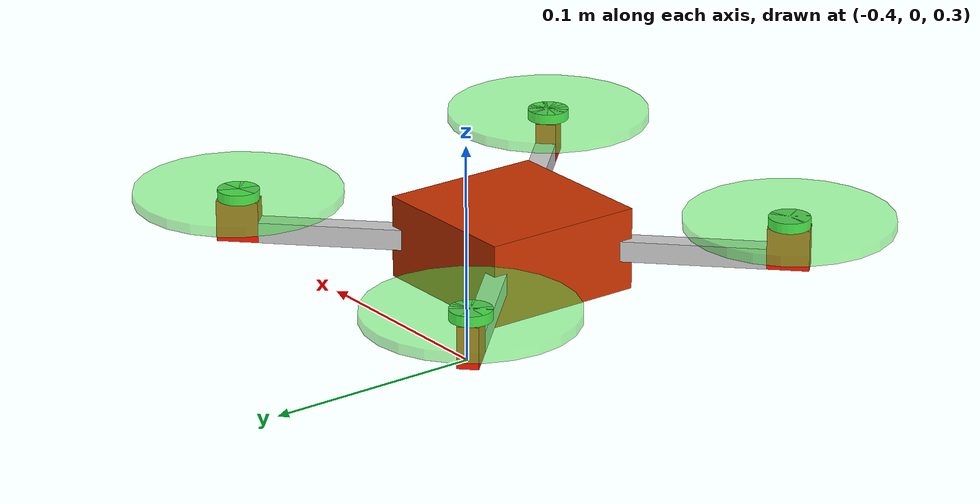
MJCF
<mujoco>
    <option	timestep="0.01" gravity="0 0 -9.81" density="1" viscosity="18e-3" integrator="RK4"/>

    <asset>
        <texture builtin="gradient" type="skybox" height="100" width="100" rgb1="1 1 1" rgb2="0 0 0"/>
        <texture name="texgeom" builtin="flat" height="1278" mark="cross" markrgb="1 1 1" random="0.01" rgb1="0.8 0.6 0.4" rgb2="0.8 0.6 0.4" type="cube" width="127"/>
        <texture name="texplane" builtin="checker" height="100" width="100" rgb1="0 0 0" rgb2="0.8 0.8 0.8" type="2d"/>
        <material name="MatPlane" reflectance="0.5" shininess="1" specular="1" texrepeat="60 60" texture="texplane"/>
        <material name="geom" texture="texgeom" texuniform="true"/>
    </asset>

    <worldbody>
        <light cutoff="100" diffuse="1 1 1" dir="-0 0 -1.3" directional="true" exponent="1" pos="0 0 1.3" specular=".1 .1 .1"/>
        <geom conaffinity="1" condim="3" material="MatPlane" name="floor" pos="0 0 0" rgba="0.4 0.3 0.3 1" size="5 5 0.2" type="plane"/>
        <camera name="fixed" pos="-0.3 -1 1.5" euler="0 0 0"/>
        <camera name="fixed1" pos="-0.3 -0.7 .7" xyaxes="1 0 0 0 1 2" mode="track" />

        <body name="core" pos="-.3 -.1 0.3" euler="0 0 45">

            <camera name="my_cam" pos="0 0 0" euler="0 0 0"/>
            <site name="center_body" type="sphere" pos="0 0 0" size=".01" quat="1 0 0 0" rgba=".3 .8 .3 1"/>

            <geom name="core_geom" type="box" pos="0 0 0" euler="0 0 45" size=".04 .04 .02" rgba=".8 .2 0 1" mass=".1"/>

            <joint name="root" type="free" damping="0" armature="0" pos="0 0 0" limited="false"/>

            <geom name="arm_front0" type="box" pos=".08 0 0" size=".04 .005 .005" quat="1 0 0 0" rgba=".8 .8 .8 1" mass=".02"/>
            <geom name="arm_back0" type="box" pos="-.08 0 0" size=".04 .005 .005" quat="0 0 0 1" rgba=".8 .8 .8 1" mass=".02"/>
            <geom name="arm_left0" type="box" pos="0 .08 0" size=".04 .005 .005" quat=".707 0 0 .707" rgba=".8 .8 .8 1" mass=".02"/>
            <geom name="arm_right0" type="box" pos="0 -.08 0" size=".04 .005 .005" quat=".707 0 0 -.707" rgba=".8 .8 .8 1" mass=".02"/>

            <body name="arm_front1" pos=".12 0 0">
                <geom type="box" pos=".01 0 .005" size=".01 .005 .01" quat="1 0 0 0" rgba="1 .1 0 1" mass=".02"/>
                <body name="thruster0" pos="0.01 0 0.015">
                    <geom type="cylinder" pos="0 0 .0025" size=".05 .0025" quat="1 0 0 0" rgba=".3 1 .3 0.5" mass=".005"/>
                    <site name="motor0" type="cylinder" pos="0 0 .0025" size=".01 .0025" quat="1 0 0 0" rgba=".3 .8 .3 1"/>
                </body>
            </body>

            <body name="arm_back1" pos="-.12 0 0">
                <geom type="box" pos="-.01 0 .005" size=".01 .005 .01" quat="0 0 0 1" rgba="1 .1 0 1" mass=".02"/>
                <body name="thruster1" pos="-0.01 0 .015">
                    <geom type="cylinder" pos="0 0 .0025" size=".05 .0025" quat="1 0 0 0" rgba=".3 1 .3 0.5" mass=".005"/>
                    <site name="motor1" type="cylinder" pos="0 0 .0025" size=".01 .0025" quat="1 0 0 0" rgba=".3 .8 .3 1"/>

                </body>
            </body>

            <body name="arm_left1" pos="0 .12 0">
                <geom type="box" pos="0 .01 .005" size=".01 .005 .01" quat=".7071068 0 0 .7071068" rgba="1 .1 0 1" mass=".02"/>
                <body name="thruster2" pos="0 0.01 0.015">
                    <geom type="cylinder" pos="0 0 .0025" size=".05 .0025" quat="1 0 0 0" rgba=".3 1 .3 0.5" mass=".005"/>
                    <site name="motor2" type="cylinder" pos="0 0 .0025" size=".01 0.0025" quat="1 0 0 0" rgba=".3 .8 .3 1"/>

                </body>
            </body>

            <body name="arm_right1" pos="0 -.12 0">
                <geom type="box" pos="0 -.01 .005" size=".01 .005 .01" quat=".7071068 0 0 -.7071068" rgba="1 .1 0 1" mass=".02"/>
                <body name="thruster3" pos="0 -0.01 .015">
                    <geom type="cylinder" pos="0 0 .0025" size=".05 .0025" quat="1 0 0 0" rgba=".3 1 .3 0.5" mass=".005"/>
                    <site type="cylinder" pos="0 0 .0025" size=".01 .0025" quat="1 0 0 0" rgba=".3 .8 .3 1" name="motor3"/>

                </body>

            </body>

        </body>
    </worldbody>

    <actuator>
        <motor ctrllimited="true" ctrlrange="0 100" gear="0  0. 1. 0. 0.  0.1" site="motor0"/>
        <motor ctrllimited="true" ctrlrange="0 100" gear="0  0. 1. 0. 0.  0.1" site="motor1"/>
        <motor ctrllimited="true" ctrlrange="0 100" gear="0  0. 1. 0. 0. -0.1" site="motor2"/>
        <motor ctrllimited="true" ctrlrange="0 100" gear="0  0. 1. 0. 0. -0.1" site="motor3"/>
    </actuator>

    <sensor>
      <gyro site="center_body" />
      <accelerometer site="center_body" />
    </sensor>

</mujoco>
